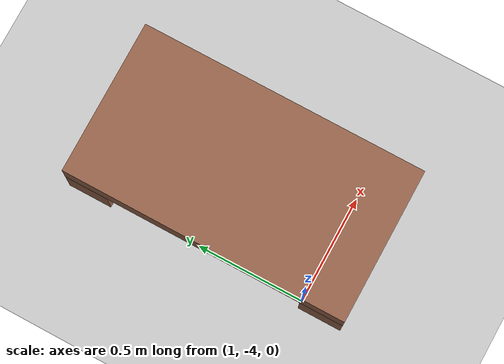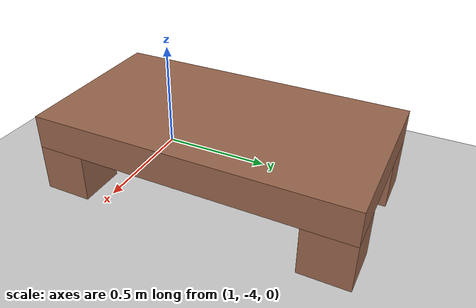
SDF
<sdf version="1.6">
 <world name="default">
  <model name="ground_plane">
   <static>1</static>
   <link name="link">
    <collision name="collision">
     <geometry><plane><normal>0 0 1</normal><size>100 100</size></plane></geometry>
     <surface><friction><ode><mu>100</mu><mu2>50</mu2></ode></friction></surface>
    </collision>
    <visual name="visual">
     <cast_shadows>0</cast_shadows>
     <geometry><plane><normal>0 0 1</normal><size>100 100</size></plane></geometry>
     <material>
      <script><uri>file://media/materials/scripts/gazebo.material</uri><name>Gazebo/Grey</name></script>
     </material>
    </visual>
   </link>
  </model>
  <model name="table">
   <link name="link_2">
    <pose>0 0 0.136 0 -0 0</pose>
    <visual name="visual">
     <geometry><box><size>0.7 1.3 0.14</size></box></geometry>
     <material>
      <lighting>1</lighting>
      <script><uri>file://media/materials/scripts/gazebo.material</uri><name>Gazebo/Grey</name></script>
      <ambient>0.6 0.4 0.3 1</ambient>
      <diffuse>0.7 0.7 0.7 1</diffuse>
      <specular>0.01 0.01 0.01 1</specular>
      <emissive>0 0 0 1</emissive>
      <shader type="vertex"><normal_map>__default__</normal_map></shader>
     </material>
    </visual>
    <collision name="collision">
     <geometry><box><size>0.7 1.3 0.14</size></box></geometry>
     <surface>
      <friction>
       <ode><mu>1</mu><mu2>1</mu2><fdir1>0 0 0</fdir1><slip1>0</slip1><slip2>0</slip2></ode>
       <torsional>
        <coefficient>1</coefficient>
        <patch_radius>0</patch_radius>
        <surface_radius>0</surface_radius>
        <use_patch_radius>1</use_patch_radius>
        <ode><slip>0</slip></ode>
       </torsional>
      </friction>
      <bounce><restitution_coefficient>0</restitution_coefficient><threshold>1e+06</threshold></bounce>
      <contact>
       <collide_without_contact>0</collide_without_contact>
       <collide_without_contact_bitmask>1</collide_without_contact_bitmask>
       <collide_bitmask>1</collide_bitmask>
       <ode>
        <soft_cfm>0</soft_cfm>
        <soft_erp>0.2</soft_erp>
        <kp>1e+13</kp>
        <kd>1</kd>
        <max_vel>0.01</max_vel>
        <min_depth>0</min_depth>
       </ode>
       <bullet>
        <split_impulse>1</split_impulse>
        <split_impulse_penetration_threshold>-0.01</split_impulse_penetration_threshold>
        <soft_cfm>0</soft_cfm>
        <soft_erp>0.2</soft_erp>
        <kp>1e+13</kp>
        <kd>1</kd>
       </bullet>
      </contact>
     </surface>
    </collision>
    <inertial>
     <inertia><ixx>1</ixx><ixy>0</ixy><ixz>0</ixz><iyy>1</iyy><iyz>0</iyz><izz>1</izz></inertia>
     <mass>1</mass>
    </inertial>
   </link>
   <link name="link_2_clone">
    <pose>-0.25 -0.55 -0.034 0 -0 0</pose>
    <visual name="visual">
     <geometry><box><size>0.2 0.2 0.2</size></box></geometry>
     <material>
      <lighting>1</lighting>
      <script><uri>file://media/materials/scripts/gazebo.material</uri><name>Gazebo/Grey</name></script>
      <ambient>0.6 0.4 0.3 1</ambient>
      <diffuse>0.7 0.7 0.7 1</diffuse>
      <specular>0.01 0.01 0.01 1</specular>
      <emissive>0 0 0 1</emissive>
      <shader type="vertex"><normal_map>__default__</normal_map></shader>
     </material>
    </visual>
    <collision name="collision">
     <geometry><box><size>0.2 0.2 0.2</size></box></geometry>
     <surface>
      <friction>
       <ode><mu>1</mu><mu2>1</mu2><fdir1>0 0 0</fdir1><slip1>0</slip1><slip2>0</slip2></ode>
       <torsional>
        <coefficient>1</coefficient>
        <patch_radius>0</patch_radius>
        <surface_radius>0</surface_radius>
        <use_patch_radius>1</use_patch_radius>
        <ode><slip>0</slip></ode>
       </torsional>
      </friction>
      <bounce><restitution_coefficient>0</restitution_coefficient><threshold>1e+06</threshold></bounce>
      <contact>
       <collide_without_contact>0</collide_without_contact>
       <collide_without_contact_bitmask>1</collide_without_contact_bitmask>
       <collide_bitmask>1</collide_bitmask>
       <ode>
        <soft_cfm>0</soft_cfm>
        <soft_erp>0.2</soft_erp>
        <kp>1e+13</kp>
        <kd>1</kd>
        <max_vel>0.01</max_vel>
        <min_depth>0</min_depth>
       </ode>
       <bullet>
        <split_impulse>1</split_impulse>
        <split_impulse_penetration_threshold>-0.01</split_impulse_penetration_threshold>
        <soft_cfm>0</soft_cfm>
        <soft_erp>0.2</soft_erp>
        <kp>1e+13</kp>
        <kd>1</kd>
       </bullet>
      </contact>
     </surface>
    </collision>
    <inertial>
     <inertia><ixx>1</ixx><ixy>0</ixy><ixz>0</ixz><iyy>1</iyy><iyz>0</iyz><izz>1</izz></inertia>
     <mass>1</mass>
    </inertial>
   </link>
   <link name="link_2_clone_clone">
    <pose>0.25 -0.55 -0.034 0 -0 0</pose>
    <visual name="visual">
     <geometry><box><size>0.2 0.2 0.2</size></box></geometry>
     <material>
      <lighting>1</lighting>
      <script><uri>file://media/materials/scripts/gazebo.material</uri><name>Gazebo/Grey</name></script>
      <ambient>0.6 0.4 0.3 1</ambient>
      <diffuse>0.7 0.7 0.7 1</diffuse>
      <specular>0.01 0.01 0.01 1</specular>
      <emissive>0 0 0 1</emissive>
      <shader type="vertex"><normal_map>__default__</normal_map></shader>
     </material>
    </visual>
    <collision name="collision">
     <geometry><box><size>0.2 0.2 0.2</size></box></geometry>
     <surface>
      <friction>
       <ode><mu>1</mu><mu2>1</mu2><fdir1>0 0 0</fdir1><slip1>0</slip1><slip2>0</slip2></ode>
       <torsional>
        <coefficient>1</coefficient>
        <patch_radius>0</patch_radius>
        <surface_radius>0</surface_radius>
        <use_patch_radius>1</use_patch_radius>
        <ode><slip>0</slip></ode>
       </torsional>
      </friction>
      <bounce><restitution_coefficient>0</restitution_coefficient><threshold>1e+06</threshold></bounce>
      <contact>
       <collide_without_contact>0</collide_without_contact>
       <collide_without_contact_bitmask>1</collide_without_contact_bitmask>
       <collide_bitmask>1</collide_bitmask>
       <ode>
        <soft_cfm>0</soft_cfm>
        <soft_erp>0.2</soft_erp>
        <kp>1e+13</kp>
        <kd>1</kd>
        <max_vel>0.01</max_vel>
        <min_depth>0</min_depth>
       </ode>
       <bullet>
        <split_impulse>1</split_impulse>
        <split_impulse_penetration_threshold>-0.01</split_impulse_penetration_threshold>
        <soft_cfm>0</soft_cfm>
        <soft_erp>0.2</soft_erp>
        <kp>1e+13</kp>
        <kd>1</kd>
       </bullet>
      </contact>
     </surface>
    </collision>
    <inertial>
     <inertia><ixx>1</ixx><ixy>0</ixy><ixz>0</ixz><iyy>1</iyy><iyz>0</iyz><izz>1</izz></inertia>
     <mass>1</mass>
    </inertial>
   </link>
   <link name="link_2_clone_clone_0">
    <pose>0.25 0.55 -0.034 0 -0 0</pose>
    <visual name="visual">
     <geometry><box><size>0.2 0.2 0.2</size></box></geometry>
     <material>
      <lighting>1</lighting>
      <script><uri>file://media/materials/scripts/gazebo.material</uri><name>Gazebo/Grey</name></script>
      <ambient>0.6 0.4 0.3 1</ambient>
      <diffuse>0.7 0.7 0.7 1</diffuse>
      <specular>0.01 0.01 0.01 1</specular>
      <emissive>0 0 0 1</emissive>
      <shader type="vertex"><normal_map>__default__</normal_map></shader>
     </material>
    </visual>
    <collision name="collision">
     <geometry><box><size>0.2 0.2 0.2</size></box></geometry>
     <surface>
      <friction>
       <ode><mu>1</mu><mu2>1</mu2><fdir1>0 0 0</fdir1><slip1>0</slip1><slip2>0</slip2></ode>
       <torsional>
        <coefficient>1</coefficient>
        <patch_radius>0</patch_radius>
        <surface_radius>0</surface_radius>
        <use_patch_radius>1</use_patch_radius>
        <ode><slip>0</slip></ode>
       </torsional>
      </friction>
      <bounce><restitution_coefficient>0</restitution_coefficient><threshold>1e+06</threshold></bounce>
      <contact>
       <collide_without_contact>0</collide_without_contact>
       <collide_without_contact_bitmask>1</collide_without_contact_bitmask>
       <collide_bitmask>1</collide_bitmask>
       <ode>
        <soft_cfm>0</soft_cfm>
        <soft_erp>0.2</soft_erp>
        <kp>1e+13</kp>
        <kd>1</kd>
        <max_vel>0.01</max_vel>
        <min_depth>0</min_depth>
       </ode>
       <bullet>
        <split_impulse>1</split_impulse>
        <split_impulse_penetration_threshold>-0.01</split_impulse_penetration_threshold>
        <soft_cfm>0</soft_cfm>
        <soft_erp>0.2</soft_erp>
        <kp>1e+13</kp>
        <kd>1</kd>
       </bullet>
      </contact>
     </surface>
    </collision>
    <inertial>
     <inertia><ixx>1</ixx><ixy>0</ixy><ixz>0</ixz><iyy>1</iyy><iyz>0</iyz><izz>1</izz></inertia>
     <mass>1</mass>
    </inertial>
   </link>
   <link name="link_2_clone_clone_1">
    <pose>-0.25 0.55 -0.034 0 -0 0</pose>
    <visual name="visual">
     <geometry><box><size>0.2 0.2 0.2</size></box></geometry>
     <material>
      <lighting>1</lighting>
      <script><uri>file://media/materials/scripts/gazebo.material</uri><name>Gazebo/Grey</name></script>
      <ambient>0.6 0.4 0.3 1</ambient>
      <diffuse>0.7 0.7 0.7 1</diffuse>
      <specular>0.01 0.01 0.01 1</specular>
      <emissive>0 0 0 1</emissive>
      <shader type="vertex"><normal_map>__default__</normal_map></shader>
     </material>
    </visual>
    <collision name="collision">
     <geometry><box><size>0.2 0.2 0.2</size></box></geometry>
     <surface>
      <friction>
       <ode><mu>1</mu><mu2>1</mu2><fdir1>0 0 0</fdir1><slip1>0</slip1><slip2>0</slip2></ode>
       <torsional>
        <coefficient>1</coefficient>
        <patch_radius>0</patch_radius>
        <surface_radius>0</surface_radius>
        <use_patch_radius>1</use_patch_radius>
        <ode><slip>0</slip></ode>
       </torsional>
      </friction>
      <bounce><restitution_coefficient>0</restitution_coefficient><threshold>1e+06</threshold></bounce>
      <contact>
       <collide_without_contact>0</collide_without_contact>
       <collide_without_contact_bitmask>1</collide_without_contact_bitmask>
       <collide_bitmask>1</collide_bitmask>
       <ode>
        <soft_cfm>0</soft_cfm>
        <soft_erp>0.2</soft_erp>
        <kp>1e+13</kp>
        <kd>1</kd>
        <max_vel>0.01</max_vel>
        <min_depth>0</min_depth>
       </ode>
       <bullet>
        <split_impulse>1</split_impulse>
        <split_impulse_penetration_threshold>-0.01</split_impulse_penetration_threshold>
        <soft_cfm>0</soft_cfm>
        <soft_erp>0.2</soft_erp>
        <kp>1e+13</kp>
        <kd>1</kd>
       </bullet>
      </contact>
     </surface>
    </collision>
    <inertial>
     <inertia><ixx>1</ixx><ixy>0</ixy><ixz>0</ixz><iyy>1</iyy><iyz>0</iyz><izz>1</izz></inertia>
     <mass>1</mass>
    </inertial>
   </link>
   <joint name="link_2_JOINT_5" type="fixed">
    <parent>link_2</parent>
    <child>link_2_clone</child>
    <physics>
     <ode><limit><cfm>0</cfm><erp>0.2</erp></limit><suspension><cfm>0</cfm><erp>0.2</erp></suspension></ode>
    </physics>
   </joint>
   <joint name="link_2_JOINT_7" type="fixed">
    <parent>link_2</parent>
    <child>link_2_clone_clone</child>
    <physics>
     <ode><limit><cfm>0</cfm><erp>0.2</erp></limit><suspension><cfm>0</cfm><erp>0.2</erp></suspension></ode>
    </physics>
   </joint>
   <joint name="link_2_JOINT_8" type="fixed">
    <parent>link_2</parent>
    <child>link_2_clone_clone_0</child>
    <physics>
     <ode><limit><cfm>0</cfm><erp>0.2</erp></limit><suspension><cfm>0</cfm><erp>0.2</erp></suspension></ode>
    </physics>
   </joint>
   <joint name="link_2_JOINT_9" type="fixed">
    <parent>link_2</parent>
    <child>link_2_clone_clone_1</child>
    <physics>
     <ode><limit><cfm>0</cfm><erp>0.2</erp></limit><suspension><cfm>0</cfm><erp>0.2</erp></suspension></ode>
    </physics>
   </joint>
   <static>0</static>
   <pose>1.30888 -3.5502 0.213999 1e-06 -0 0.000211</pose>
  </model>
 </world>
</sdf>
